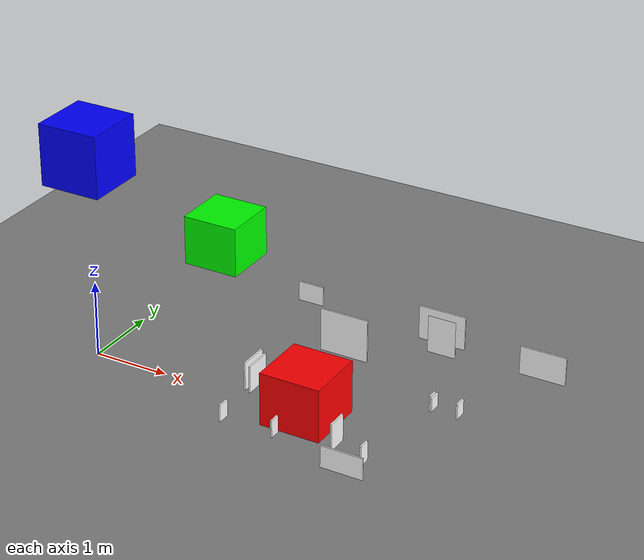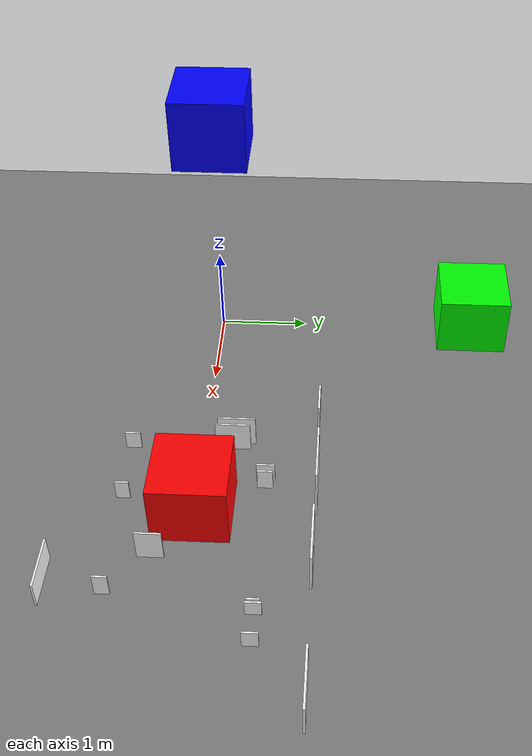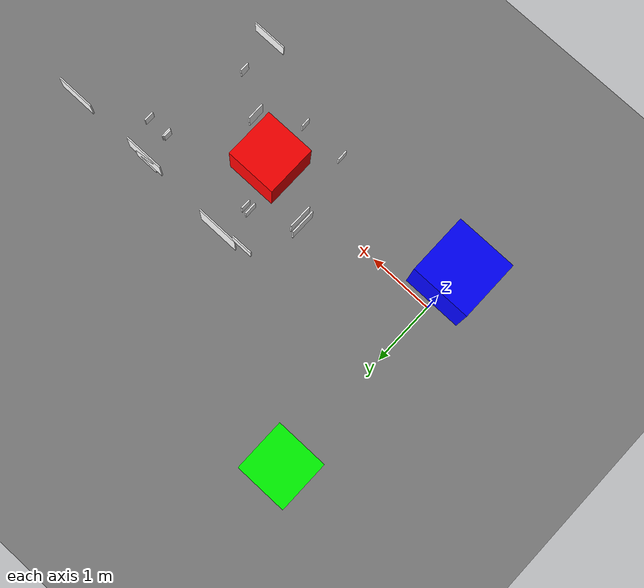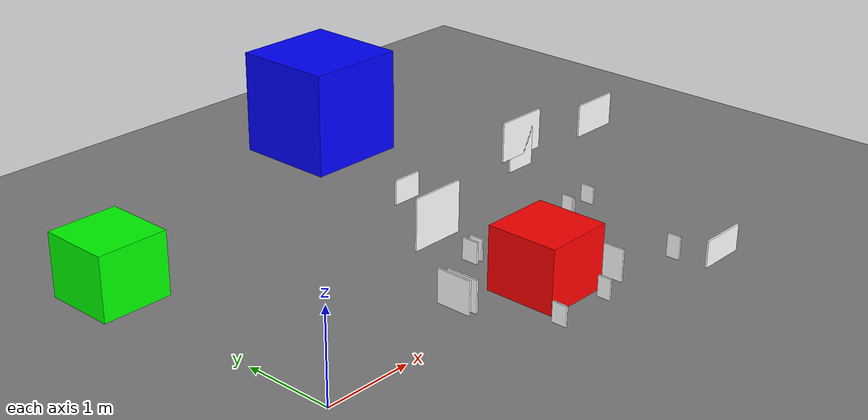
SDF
<sdf version="1.9">
 <world name="tunnel_world">
  <model name="ground_plane">
   <static>true</static>
   <link name="ground">
    <collision name="ground_collision">
     <geometry><plane><normal>0 0 1</normal><size>100 100</size></plane></geometry>
    </collision>
    <visual name="ground_visual">
     <geometry><plane><normal>0 0 1</normal><size>100 100</size></plane></geometry>
     <material>
      <diffuse>0.50 0.50 0.50 1</diffuse>
      <emissive>0.08 0.08 0.08 1</emissive>
      <ambient>0.5 0.5 0.5</ambient>
     </material>
    </visual>
   </link>
  </model>
  <model name="defect_crack_01">
   <static>true</static>
   <pose>2.35 1.25 0.916 0 0 0</pose>
   <link name="link">
    <visual name="visual">
     <laser_retro>500</laser_retro>
     <geometry><box><size>0.333 0.02 0.256</size></box></geometry>
     <material>
      <ambient>1 1 1 1</ambient>
      <diffuse>1 1 1 1</diffuse>
      <emissive>0.05 0.05 0.05 1</emissive>
      <specular>0.05 0.05 0.05 1</specular>
      <pbr>
       <metal>
        <albedo_map>file:///home/ylf/workspace/inspection_robot/data_gen/textures/crack_5.png</albedo_map>
        <metalness>0.0</metalness>
        <roughness>0.9</roughness>
       </metal>
      </pbr>
     </material>
    </visual>
    <collision name="collision"><geometry><box><size>0.333 0.02 0.256</size></box></geometry></collision>
   </link>
  </model>
  <model name="defect_crack_05">
   <static>true</static>
   <pose>4.177 -1.25 0.465 0 0 0</pose>
   <link name="link">
    <visual name="visual">
     <laser_retro>500</laser_retro>
     <geometry><box><size>0.537 0.02 0.284</size></box></geometry>
     <material>
      <ambient>1 1 1 1</ambient>
      <diffuse>1 1 1 1</diffuse>
      <emissive>0.05 0.05 0.05 1</emissive>
      <specular>0.05 0.05 0.05 1</specular>
      <pbr>
       <metal>
        <albedo_map>file:///home/ylf/workspace/inspection_robot/data_gen/textures/crack_1.png</albedo_map>
        <metalness>0.0</metalness>
        <roughness>0.9</roughness>
       </metal>
      </pbr>
     </material>
    </visual>
    <collision name="collision"><geometry><box><size>0.537 0.02 0.284</size></box></geometry></collision>
   </link>
  </model>
  <model name="defect_equip_intrusion_01">
   <static>true</static>
   <pose>2.13 0.322 0.191 0 0 0</pose>
   <link name="link">
    <visual name="visual">
     <laser_retro>900</laser_retro>
     <geometry><box><size>0.02 0.374 0.363</size></box></geometry>
     <material>
      <ambient>1 1 1 1</ambient>
      <diffuse>1 1 1 1</diffuse>
      <emissive>0.05 0.05 0.05 1</emissive>
      <specular>0.05 0.05 0.05 1</specular>
      <pbr>
       <metal>
        <albedo_map>file:///home/ylf/workspace/inspection_robot/data_gen/textures/equip_intrusion_5.png</albedo_map>
        <metalness>0.0</metalness>
        <roughness>0.9</roughness>
       </metal>
      </pbr>
     </material>
    </visual>
   </link>
  </model>
  <model name="defect_equip_intrusion_05">
   <static>true</static>
   <pose>3.616 -0.36 0.19 0 0 0</pose>
   <link name="link">
    <visual name="visual">
     <laser_retro>900</laser_retro>
     <geometry><box><size>0.02 0.271 0.361</size></box></geometry>
     <material>
      <ambient>1 1 1 1</ambient>
      <diffuse>1 1 1 1</diffuse>
      <emissive>0.05 0.05 0.05 1</emissive>
      <specular>0.05 0.05 0.05 1</specular>
      <pbr>
       <metal>
        <albedo_map>file:///home/ylf/workspace/inspection_robot/data_gen/textures/equip_intrusion_5.png</albedo_map>
        <metalness>0.0</metalness>
        <roughness>0.9</roughness>
       </metal>
      </pbr>
     </material>
    </visual>
   </link>
  </model>
  <model name="defect_equip_intrusion_08">
   <static>true</static>
   <pose>2.05 0.358 0.199 0 0 0</pose>
   <link name="link">
    <visual name="visual">
     <laser_retro>900</laser_retro>
     <geometry><box><size>0.02 0.404 0.377</size></box></geometry>
     <material>
      <ambient>1 1 1 1</ambient>
      <diffuse>1 1 1 1</diffuse>
      <emissive>0.05 0.05 0.05 1</emissive>
      <specular>0.05 0.05 0.05 1</specular>
      <pbr>
       <metal>
        <albedo_map>file:///home/ylf/workspace/inspection_robot/data_gen/textures/equip_intrusion_4.png</albedo_map>
        <metalness>0.0</metalness>
        <roughness>0.9</roughness>
       </metal>
      </pbr>
     </material>
    </visual>
   </link>
  </model>
  <model name="defect_leakage_07">
   <static>true</static>
   <pose>5.453 1.25 0.809 0 0 0</pose>
   <link name="link">
    <visual name="visual">
     <laser_retro>300</laser_retro>
     <geometry><box><size>0.581 0.02 0.368</size></box></geometry>
     <material>
      <ambient>1 1 1 1</ambient>
      <diffuse>1 1 1 1</diffuse>
      <emissive>0.05 0.05 0.05 1</emissive>
      <specular>0.05 0.05 0.05 1</specular>
      <pbr>
       <metal>
        <albedo_map>file:///home/ylf/workspace/inspection_robot/data_gen/textures/leakage_5.png</albedo_map>
        <metalness>0.0</metalness>
        <roughness>0.9</roughness>
       </metal>
      </pbr>
     </material>
    </visual>
    <collision name="collision"><geometry><box><size>0.581 0.02 0.368</size></box></geometry></collision>
   </link>
  </model>
  <model name="defect_rail_fastener_broken_05">
   <static>true</static>
   <pose>2.294 -0.717 0.264 0 0 0</pose>
   <link name="link">
    <visual name="visual">
     <laser_retro>450</laser_retro>
     <geometry><box><size>0.02 0.163 0.219</size></box></geometry>
     <material>
      <ambient>1 1 1 1</ambient>
      <diffuse>1 1 1 1</diffuse>
      <emissive>0.05 0.05 0.05 1</emissive>
      <specular>0.05 0.05 0.05 1</specular>
      <pbr>
       <metal>
        <albedo_map>file:///home/ylf/workspace/inspection_robot/data_gen/textures/rail_fastener_broken_1.png</albedo_map>
        <metalness>0.0</metalness>
        <roughness>0.9</roughness>
       </metal>
      </pbr>
     </material>
    </visual>
   </link>
  </model>
  <model name="defect_rail_fastener_broken_07">
   <static>true</static>
   <pose>2.992 -0.717 0.268 0 0 0</pose>
   <link name="link">
    <visual name="visual">
     <laser_retro>450</laser_retro>
     <geometry><box><size>0.02 0.144 0.227</size></box></geometry>
     <material>
      <ambient>1 1 1 1</ambient>
      <diffuse>1 1 1 1</diffuse>
      <emissive>0.05 0.05 0.05 1</emissive>
      <specular>0.05 0.05 0.05 1</specular>
      <pbr>
       <metal>
        <albedo_map>file:///home/ylf/workspace/inspection_robot/data_gen/textures/rail_fastener_broken_2.png</albedo_map>
        <metalness>0.0</metalness>
        <roughness>0.9</roughness>
       </metal>
      </pbr>
     </material>
    </visual>
   </link>
  </model>
  <model name="defect_rail_fastener_loose_02">
   <static>true</static>
   <pose>4.167 -0.717 0.283 0 0 0</pose>
   <link name="link">
    <visual name="visual">
     <laser_retro>380</laser_retro>
     <geometry><box><size>0.02 0.148 0.257</size></box></geometry>
     <material>
      <ambient>1 1 1 1</ambient>
      <diffuse>1 1 1 1</diffuse>
      <emissive>0.05 0.05 0.05 1</emissive>
      <specular>0.05 0.05 0.05 1</specular>
      <pbr>
       <metal>
        <albedo_map>file:///home/ylf/workspace/inspection_robot/data_gen/textures/rail_fastener_loose_5.png</albedo_map>
        <metalness>0.0</metalness>
        <roughness>0.9</roughness>
       </metal>
      </pbr>
     </material>
    </visual>
   </link>
  </model>
  <model name="defect_rail_fastener_loose_04">
   <static>true</static>
   <pose>2.796 0.717 0.278 0 0 0</pose>
   <link name="link">
    <visual name="visual">
     <laser_retro>380</laser_retro>
     <geometry><box><size>0.02 0.16 0.245</size></box></geometry>
     <material>
      <ambient>1 1 1 1</ambient>
      <diffuse>1 1 1 1</diffuse>
      <emissive>0.05 0.05 0.05 1</emissive>
      <specular>0.05 0.05 0.05 1</specular>
      <pbr>
       <metal>
        <albedo_map>file:///home/ylf/workspace/inspection_robot/data_gen/textures/rail_fastener_loose_1.png</albedo_map>
        <metalness>0.0</metalness>
        <roughness>0.9</roughness>
       </metal>
      </pbr>
     </material>
    </visual>
   </link>
  </model>
  <model name="defect_rail_fastener_missing_04">
   <static>true</static>
   <pose>4.663 0.717 0.256 0 0 0</pose>
   <link name="link">
    <visual name="visual">
     <laser_retro>520</laser_retro>
     <geometry><box><size>0.02 0.157 0.202</size></box></geometry>
     <material>
      <ambient>1 1 1 1</ambient>
      <diffuse>1 1 1 1</diffuse>
      <emissive>0.05 0.05 0.05 1</emissive>
      <specular>0.05 0.05 0.05 1</specular>
      <pbr>
       <metal>
        <albedo_map>file:///home/ylf/workspace/inspection_robot/data_gen/textures/rail_fastener_missing_3.png</albedo_map>
        <metalness>0.0</metalness>
        <roughness>0.9</roughness>
       </metal>
      </pbr>
     </material>
    </visual>
   </link>
  </model>
  <model name="defect_rail_fastener_missing_06">
   <static>true</static>
   <pose>2.708 0.717 0.277 0 0 0</pose>
   <link name="link">
    <visual name="visual">
     <laser_retro>520</laser_retro>
     <geometry><box><size>0.02 0.19 0.244</size></box></geometry>
     <material>
      <ambient>1 1 1 1</ambient>
      <diffuse>1 1 1 1</diffuse>
      <emissive>0.05 0.05 0.05 1</emissive>
      <specular>0.05 0.05 0.05 1</specular>
      <pbr>
       <metal>
        <albedo_map>file:///home/ylf/workspace/inspection_robot/data_gen/textures/rail_fastener_missing_1.png</albedo_map>
        <metalness>0.0</metalness>
        <roughness>0.9</roughness>
       </metal>
      </pbr>
     </material>
    </visual>
   </link>
  </model>
  <model name="defect_rail_fastener_missing_07">
   <static>true</static>
   <pose>4.328 0.717 0.246 0 0 0</pose>
   <link name="link">
    <visual name="visual">
     <laser_retro>520</laser_retro>
     <geometry><box><size>0.02 0.159 0.181</size></box></geometry>
     <material>
      <ambient>1 1 1 1</ambient>
      <diffuse>1 1 1 1</diffuse>
      <emissive>0.05 0.05 0.05 1</emissive>
      <specular>0.05 0.05 0.05 1</specular>
      <pbr>
       <metal>
        <albedo_map>file:///home/ylf/workspace/inspection_robot/data_gen/textures/rail_fastener_missing_4.png</albedo_map>
        <metalness>0.0</metalness>
        <roughness>0.9</roughness>
       </metal>
      </pbr>
     </material>
    </visual>
   </link>
  </model>
  <model name="defect_rail_fastener_missing_08">
   <static>true</static>
   <pose>4.305 0.717 0.255 0 0 0</pose>
   <link name="link">
    <visual name="visual">
     <laser_retro>520</laser_retro>
     <geometry><box><size>0.02 0.13 0.199</size></box></geometry>
     <material>
      <ambient>1 1 1 1</ambient>
      <diffuse>1 1 1 1</diffuse>
      <emissive>0.05 0.05 0.05 1</emissive>
      <specular>0.05 0.05 0.05 1</specular>
      <pbr>
       <metal>
        <albedo_map>file:///home/ylf/workspace/inspection_robot/data_gen/textures/rail_fastener_missing_4.png</albedo_map>
        <metalness>0.0</metalness>
        <roughness>0.9</roughness>
       </metal>
      </pbr>
     </material>
    </visual>
   </link>
  </model>
  <model name="defect_spalling_01">
   <static>true</static>
   <pose>4.14 1.25 0.817 0 0 0</pose>
   <link name="link">
    <visual name="visual">
     <laser_retro>700</laser_retro>
     <geometry><box><size>0.364 0.02 0.488</size></box></geometry>
     <material>
      <ambient>1 1 1 1</ambient>
      <diffuse>1 1 1 1</diffuse>
      <emissive>0.05 0.05 0.05 1</emissive>
      <specular>0.05 0.05 0.05 1</specular>
      <pbr>
       <metal>
        <albedo_map>file:///home/ylf/workspace/inspection_robot/data_gen/textures/spalling_4.png</albedo_map>
        <metalness>0.0</metalness>
        <roughness>0.9</roughness>
       </metal>
      </pbr>
     </material>
    </visual>
    <collision name="collision"><geometry><box><size>0.364 0.02 0.488</size></box></geometry></collision>
   </link>
  </model>
  <model name="defect_spalling_06">
   <static>true</static>
   <pose>4.14 1.25 0.945 0 0 0</pose>
   <link name="link">
    <visual name="visual">
     <laser_retro>700</laser_retro>
     <geometry><box><size>0.605 0.02 0.439</size></box></geometry>
     <material>
      <ambient>1 1 1 1</ambient>
      <diffuse>1 1 1 1</diffuse>
      <emissive>0.05 0.05 0.05 1</emissive>
      <specular>0.05 0.05 0.05 1</specular>
      <pbr>
       <metal>
        <albedo_map>file:///home/ylf/workspace/inspection_robot/data_gen/textures/spalling_5.png</albedo_map>
        <metalness>0.0</metalness>
        <roughness>0.9</roughness>
       </metal>
      </pbr>
     </material>
    </visual>
    <collision name="collision"><geometry><box><size>0.605 0.02 0.439</size></box></geometry></collision>
   </link>
  </model>
  <model name="defect_spalling_08">
   <static>true</static>
   <pose>2.811 1.25 0.46 0 0 0</pose>
   <link name="link">
    <visual name="visual">
     <laser_retro>700</laser_retro>
     <geometry><box><size>0.651 0.02 0.581</size></box></geometry>
     <material>
      <ambient>1 1 1 1</ambient>
      <diffuse>1 1 1 1</diffuse>
      <emissive>0.05 0.05 0.05 1</emissive>
      <specular>0.05 0.05 0.05 1</specular>
      <pbr>
       <metal>
        <albedo_map>file:///home/ylf/workspace/inspection_robot/data_gen/textures/spalling_4.png</albedo_map>
        <metalness>0.0</metalness>
        <roughness>0.9</roughness>
       </metal>
      </pbr>
     </material>
    </visual>
    <collision name="collision"><geometry><box><size>0.651 0.02 0.581</size></box></geometry></collision>
   </link>
  </model>
  <model name="marker_red_fwd">
   <static>true</static>
   <pose>3 0 0.30 0 0 0</pose>
   <link name="l">
    <visual name="v">
     <geometry><box><size>0.8 0.8 0.8</size></box></geometry>
     <material><ambient>1 0 0 1</ambient><diffuse>1 0 0 1</diffuse></material>
    </visual>
   </link>
  </model>
  <model name="marker_green_side">
   <static>true</static>
   <pose>0 3 0.30 0 0 0</pose>
   <link name="l">
    <visual name="v">
     <geometry><box><size>0.8 0.8 0.8</size></box></geometry>
     <material><ambient>0 1 0 1</ambient><diffuse>0 1 0 1</diffuse></material>
    </visual>
   </link>
  </model>
  <model name="marker_blue_up">
   <static>true</static>
   <pose>0 0 2.8 0 0 0</pose>
   <link name="l">
    <visual name="v">
     <geometry><box><size>0.8 0.8 0.8</size></box></geometry>
     <material><ambient>0 0 1 1</ambient><diffuse>0 0 1 1</diffuse></material>
    </visual>
   </link>
  </model>
 </world>
</sdf>
